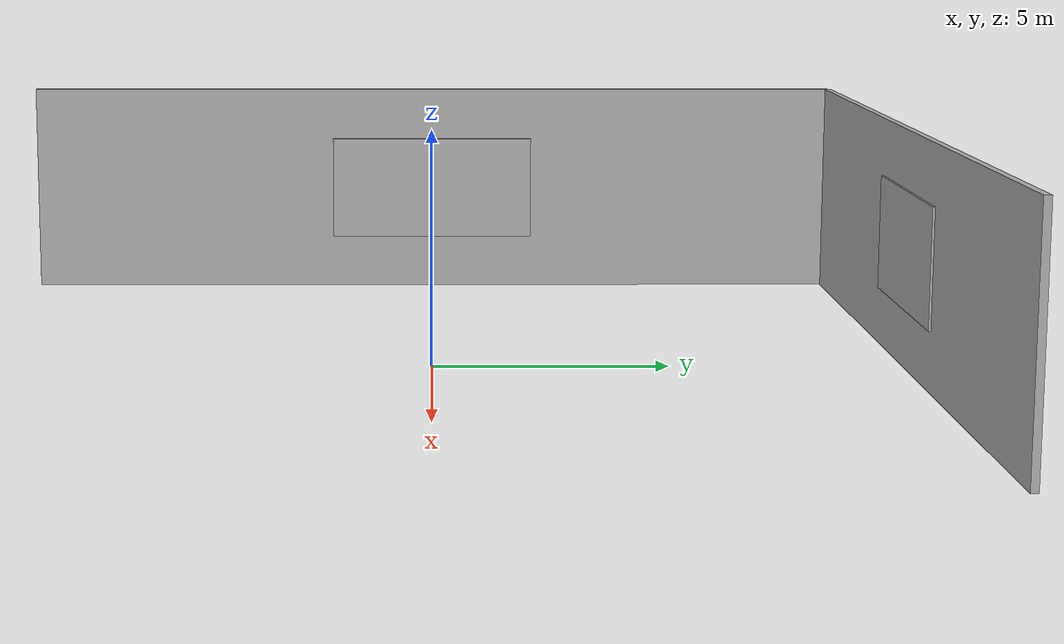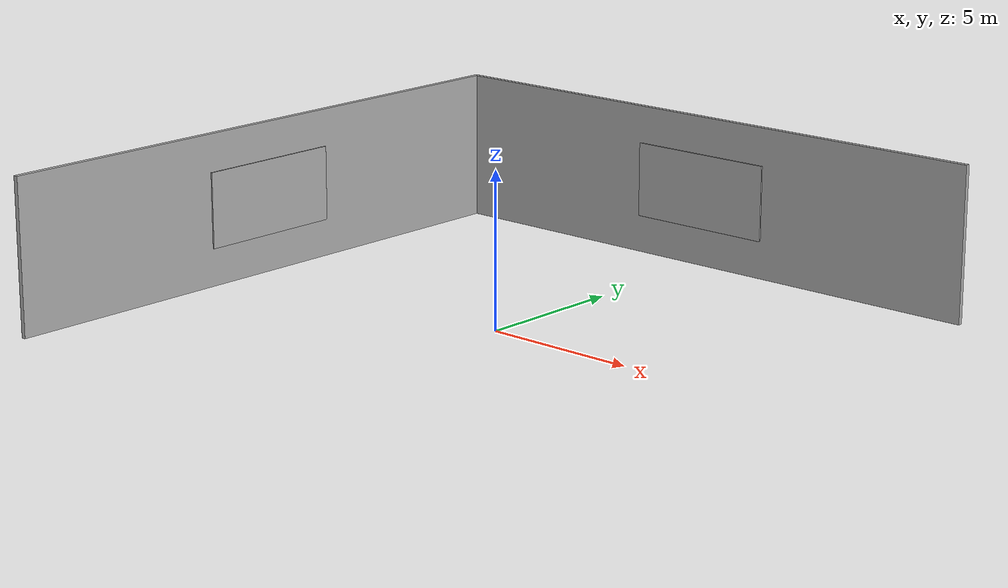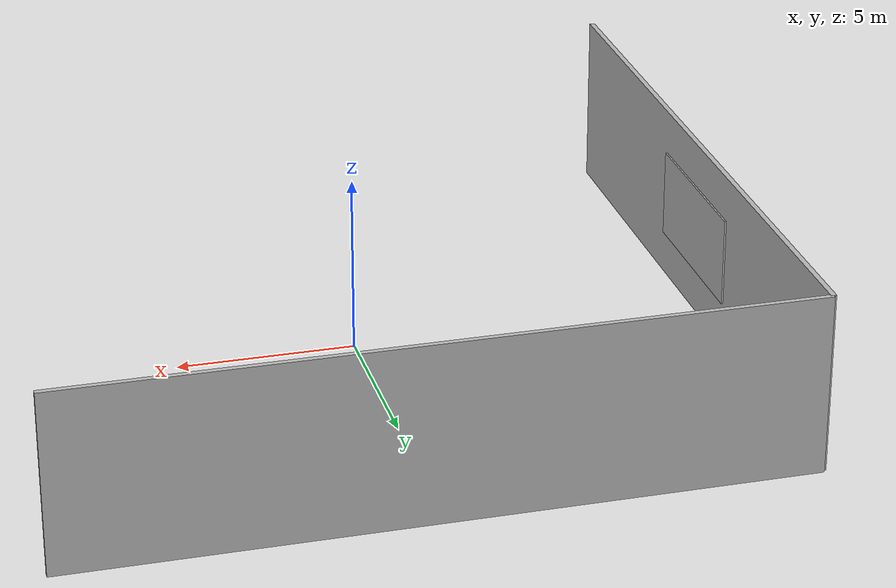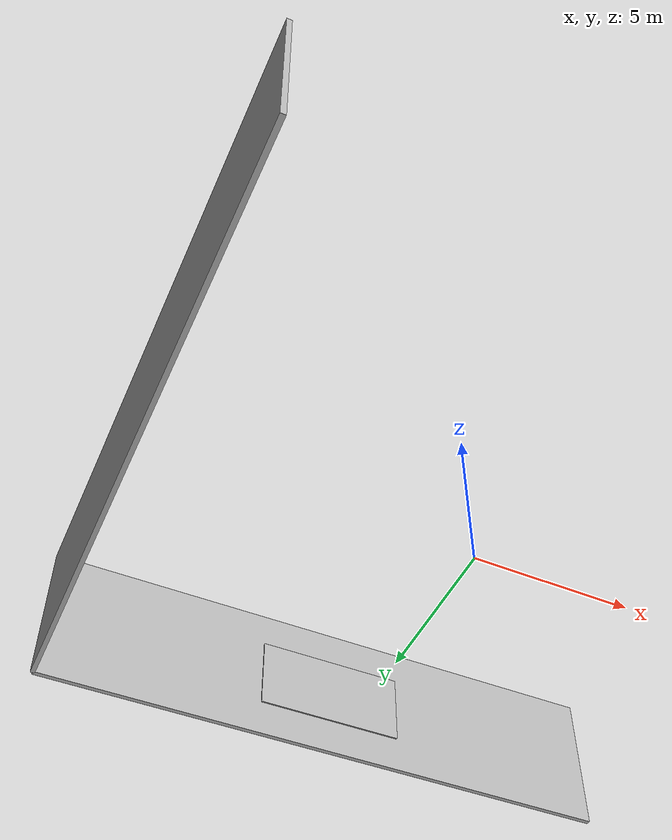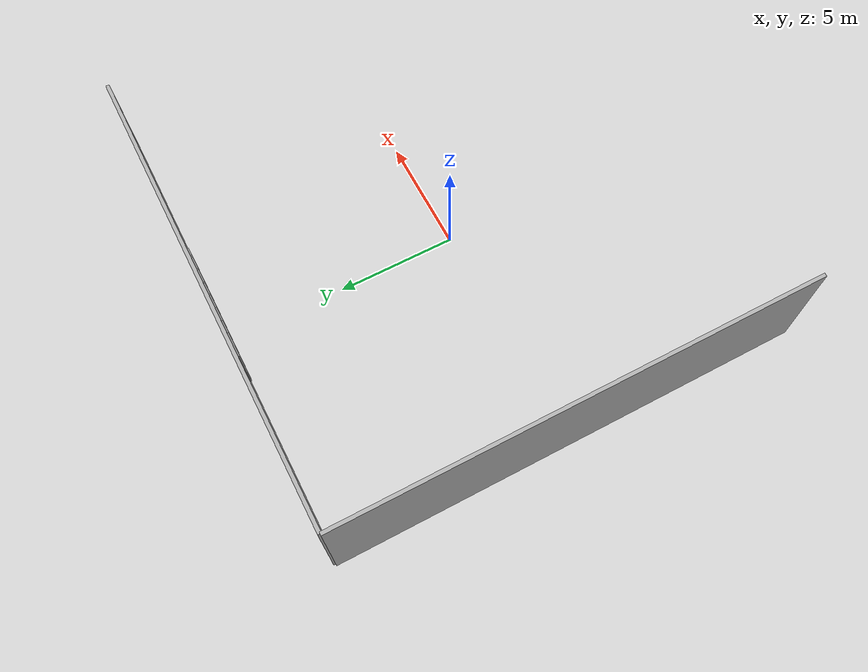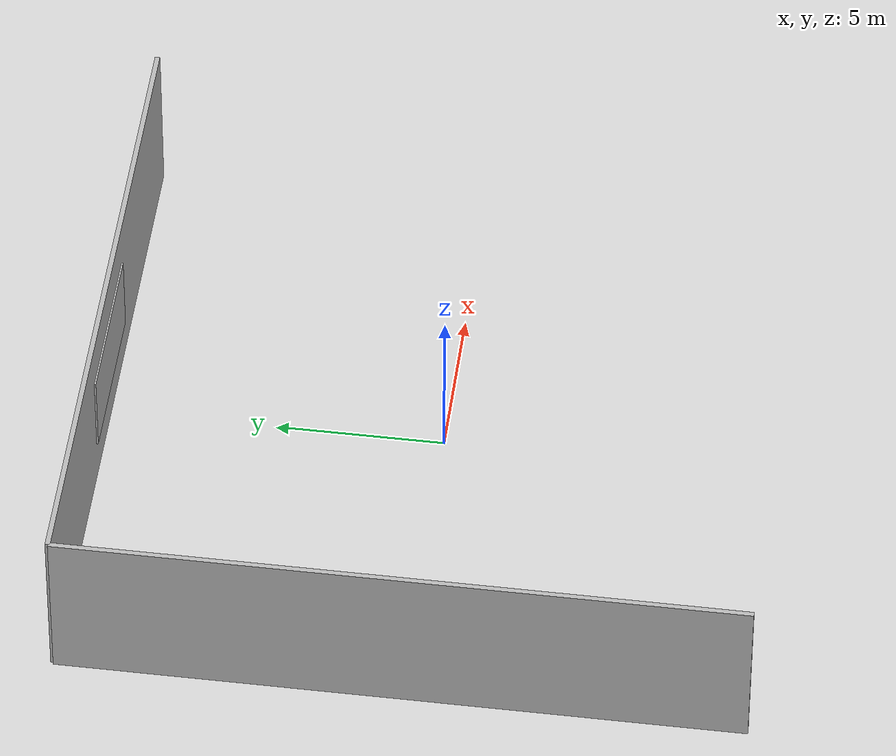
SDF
<?xml version="1.0"?>
<sdf version="1.6">
  <model name="my_wall">
    <static>true</static>
    <link name="wall">
      <visual name="wall_visual">
        <pose>-10 0 2.5 0 0 0</pose>
        <geometry>
          <box>
            <size>0.15 20 5</size>
          </box>
        </geometry>
        <material>
          <script>
            <uri>/robot_ws/src/r2000_description/materials/textures</uri>
            <uri>/robot_ws/src/r2000_description/materials/scripts</uri>
            <name>Warehouse/Floor</name>
          </script>
        </material>
      </visual>
    </link>
    <link name="wall2">
      <visual name="wall2_visual">
        <pose>0 10 2.5 0 0 1.57</pose>
        <geometry>
          <box>
            <size>0.15 20 5</size>
          </box>
        </geometry>
        <material>
          <script>
            <uri>/robot_ws/src/r2000_description/materials/textures</uri>
            <uri>/robot_ws/src/r2000_description/materials/scripts</uri>
            <name>Warehouse/Floor</name>
          </script>
        </material>
      </visual>
    </link>
    <link name="tmc">
      <visual name="tmc_visual">
        <pose>-9.9 0 2.5 0 0 0</pose>
        <geometry>
          <box>
            <size>0.05 5 2.5</size>
          </box>
        </geometry>
        <material>
          <script>
            <uri>/robot_ws/src/r2000_description/materials/textures</uri>
            <uri>/robot_ws/src/r2000_description/materials/scripts</uri>
            <name>Tmc/Logo</name>
          </script>
        </material>
      </visual>
    </link>
    <link name="tmc2">
      <visual name="tmc2_visual">
        <pose>0 9.9 2.5 0 0 1.57</pose>
        <geometry>
          <box>
            <size>0.05 5 2.5</size>
          </box>
        </geometry>
        <material>
          <script>
            <uri>/robot_ws/src/r2000_description/materials/textures</uri>
            <uri>/robot_ws/src/r2000_description/materials/scripts</uri>
            <name>Tmc/Logo</name>
          </script>
        </material>
      </visual>
    </link>
  </model>
</sdf>
